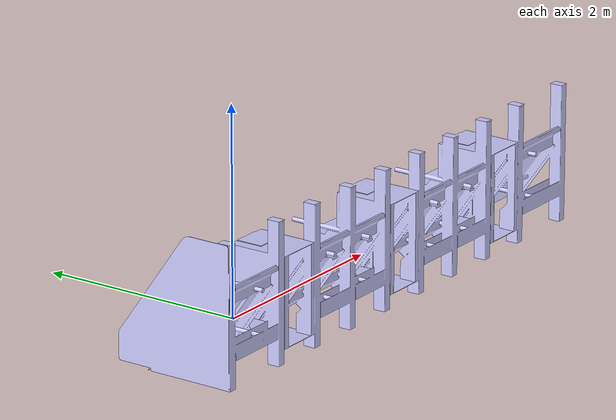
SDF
<?xml version="1.0" encoding="utf-8"?>
<sdf version="1.5">
  <model name="BlueGrid">
    <pose>0 0 0 0 0 0</pose>

    <link name="Body">
      <gravity>0</gravity>
      <self_collide>0</self_collide>
      <pose>2.58766437610333 0.373657256229708 -0.132157991348386 0 0 0</pose>
      <must_be_base_link>1</must_be_base_link>
      <velocity_decay>
        <linear>0</linear>
        <angular>0</angular>
      </velocity_decay>
      <inertial>
        <mass>171.757554835826</mass>
        <pose>0 0 0 0 0 0</pose>
        <inertia>
          <ixx>9.13610706013795</ixx>
          <ixy>2.27938493877244</ixy>
          <ixz>0.977433511583546</ixz>
          <iyy>450.556531174994</iyy>
          <iyz>2.87991649996356</iyz>
          <izz>451.900251698765</izz>
        </inertia>
      </inertial>
      <collision name="Body_collision">
        <pose>-3.32839104198053 -0.373657256229717 0.82890430125006 0 0 0</pose>
        <geometry>
          <mesh>
            <scale>1 1 1</scale>
            <uri>model://BlueGrid/meshes/Body_col.STL</uri>
          </mesh>
        </geometry>
        <surface>
          <contact>
            <ode />
          </contact>
          <friction>
            <ode>
              <mu>0</mu>
              <mu2>0</mu2>
            </ode>
          </friction>
        </surface>
      </collision>
      <visual name="Body_visual">
        <pose>-3.32839104198053 -0.373657256229717 0.82890430125006 0 0 0</pose>
        <material>
          <ambient>0.8 0.8 1 1</ambient>
          <diffuse>0.8 0.8 1 1</diffuse>
        </material>
        <geometry>
          <mesh>
            <scale>1 1 1</scale>
            <uri>model://BlueGrid/meshes/Body.STL</uri>
          </mesh>
        </geometry>
      </visual>
    </link>
    <joint name="Grid-World" type="fixed">
      <parent>world</parent>
      <child>Body</child>
   </joint>
  </model>
</sdf>
